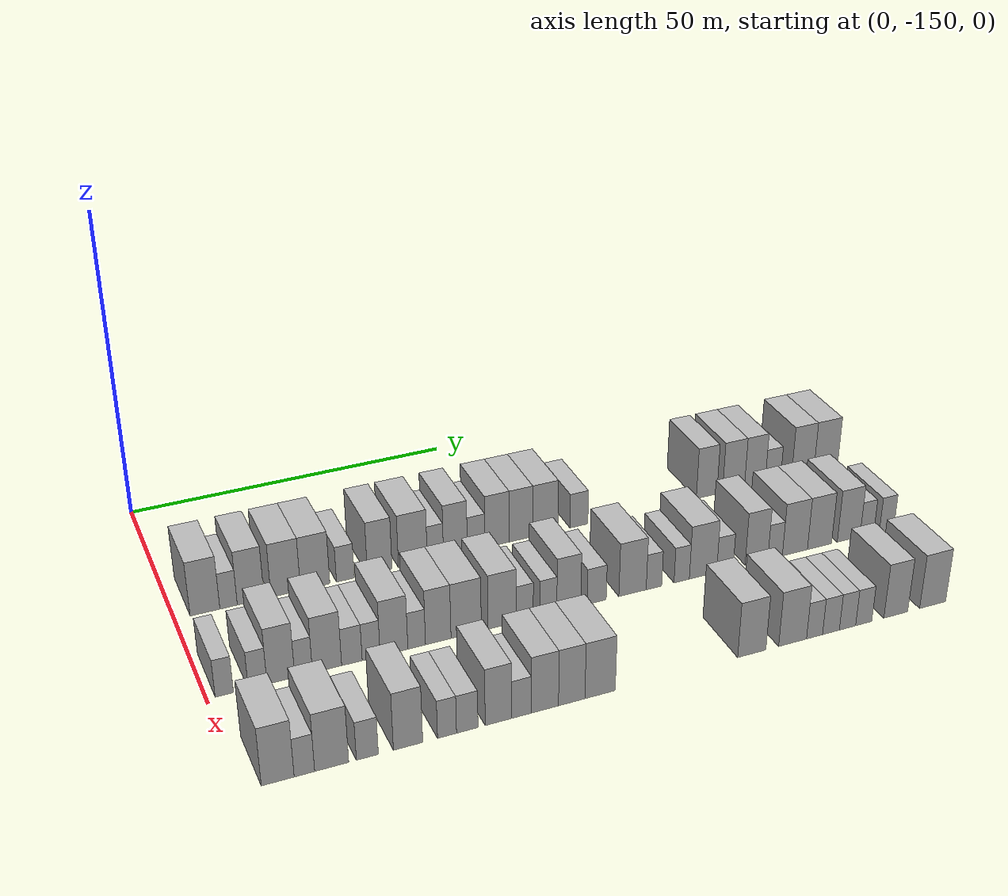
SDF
<sdf version="1.6">
 <world name="default">
  <model name="building_25">
   <static>1</static>
   <pose>25.0000 -145.6958 0 0.000000 0.000000 0.000000</pose>
   <link name="link">
    <pose>0 0 4.50 0 0 0</pose>
    <collision name="collision"><geometry><box><size>10.0000 4.2704 9.0000</size></box></geometry></collision>
    <visual name="visual">
     <cast_shadows>0</cast_shadows>
     <geometry><box><size>10.0000 4.2704 9.0000</size></box></geometry>
     <material>
      <script>
       <uri>model://HANNAS_wall/materials/scripts</uri>
       <uri>model://HANNAS_wall/materials/textures</uri>
       <name>vrc/HANNAS_wall</name>
      </script>
     </material>
    </visual>
   </link>
  </model>
  <model name="building_26">
   <static>1</static>
   <pose>25.0000 -142.3037 0 0.000000 0.000000 0.000000</pose>
   <link name="link">
    <pose>0 0 3.00 0 0 0</pose>
    <collision name="collision"><geometry><box><size>10.0000 2.5137 6.0000</size></box></geometry></collision>
    <visual name="visual">
     <cast_shadows>0</cast_shadows>
     <geometry><box><size>10.0000 2.5137 6.0000</size></box></geometry>
     <material>
      <script>
       <uri>model://HANNAS_wall/materials/scripts</uri>
       <uri>model://HANNAS_wall/materials/textures</uri>
       <name>vrc/HANNAS_wall</name>
      </script>
     </material>
    </visual>
   </link>
  </model>
  <model name="building_27">
   <static>1</static>
   <pose>25.0000 -139.0851 0 0.000000 0.000000 0.000000</pose>
   <link name="link">
    <pose>0 0 4.50 0 0 0</pose>
    <collision name="collision"><geometry><box><size>10.0000 3.9237 9.0000</size></box></geometry></collision>
    <visual name="visual">
     <cast_shadows>0</cast_shadows>
     <geometry><box><size>10.0000 3.9237 9.0000</size></box></geometry>
     <material>
      <script>
       <uri>model://HANNAS_wall/materials/scripts</uri>
       <uri>model://HANNAS_wall/materials/textures</uri>
       <name>vrc/HANNAS_wall</name>
      </script>
     </material>
    </visual>
   </link>
  </model>
  <model name="building_28">
   <static>1</static>
   <pose>25.0000 -133.9428 0 0.000000 0.000000 0.000000</pose>
   <link name="link">
    <pose>0 0 4.50 0 0 0</pose>
    <collision name="collision"><geometry><box><size>10.0000 4.3609 9.0000</size></box></geometry></collision>
    <visual name="visual">
     <cast_shadows>0</cast_shadows>
     <geometry><box><size>10.0000 4.3609 9.0000</size></box></geometry>
     <material>
      <script>
       <uri>model://HANNAS_wall/materials/scripts</uri>
       <uri>model://HANNAS_wall/materials/textures</uri>
       <name>vrc/HANNAS_wall</name>
      </script>
     </material>
    </visual>
   </link>
  </model>
  <model name="building_29">
   <static>1</static>
   <pose>25.0000 -129.5690 0 0.000000 0.000000 0.000000</pose>
   <link name="link">
    <pose>0 0 4.50 0 0 0</pose>
    <collision name="collision"><geometry><box><size>10.0000 4.3865 9.0000</size></box></geometry></collision>
    <visual name="visual">
     <cast_shadows>0</cast_shadows>
     <geometry><box><size>10.0000 4.3865 9.0000</size></box></geometry>
     <material>
      <script>
       <uri>model://HANNAS_wall/materials/scripts</uri>
       <uri>model://HANNAS_wall/materials/textures</uri>
       <name>vrc/HANNAS_wall</name>
      </script>
     </material>
    </visual>
   </link>
  </model>
  <model name="building_30">
   <static>1</static>
   <pose>25.0000 -125.0224 0 0.000000 0.000000 0.000000</pose>
   <link name="link">
    <pose>0 0 3.00 0 0 0</pose>
    <collision name="collision"><geometry><box><size>10.0000 2.7068 6.0000</size></box></geometry></collision>
    <visual name="visual">
     <cast_shadows>0</cast_shadows>
     <geometry><box><size>10.0000 2.7068 6.0000</size></box></geometry>
     <material>
      <script>
       <uri>model://HANNAS_wall/materials/scripts</uri>
       <uri>model://HANNAS_wall/materials/textures</uri>
       <name>vrc/HANNAS_wall</name>
      </script>
     </material>
    </visual>
   </link>
  </model>
  <model name="building_31">
   <static>1</static>
   <pose>25.0000 -119.7780 0 0.000000 0.000000 0.000000</pose>
   <link name="link">
    <pose>0 0 4.50 0 0 0</pose>
    <collision name="collision"><geometry><box><size>10.0000 3.7821 9.0000</size></box></geometry></collision>
    <visual name="visual">
     <cast_shadows>0</cast_shadows>
     <geometry><box><size>10.0000 3.7821 9.0000</size></box></geometry>
     <material>
      <script>
       <uri>model://HANNAS_wall/materials/scripts</uri>
       <uri>model://HANNAS_wall/materials/textures</uri>
       <name>vrc/HANNAS_wall</name>
      </script>
     </material>
    </visual>
   </link>
  </model>
  <model name="building_32">
   <static>1</static>
   <pose>25.0000 -114.6469 0 0.000000 0.000000 0.000000</pose>
   <link name="link">
    <pose>0 0 4.50 0 0 0</pose>
    <collision name="collision"><geometry><box><size>10.0000 4.4802 9.0000</size></box></geometry></collision>
    <visual name="visual">
     <cast_shadows>0</cast_shadows>
     <geometry><box><size>10.0000 4.4802 9.0000</size></box></geometry>
     <material>
      <script>
       <uri>model://HANNAS_wall/materials/scripts</uri>
       <uri>model://HANNAS_wall/materials/textures</uri>
       <name>vrc/HANNAS_wall</name>
      </script>
     </material>
    </visual>
   </link>
  </model>
  <model name="building_33">
   <static>1</static>
   <pose>25.0000 -111.1331 0 0.000000 0.000000 0.000000</pose>
   <link name="link">
    <pose>0 0 3.00 0 0 0</pose>
    <collision name="collision"><geometry><box><size>10.0000 2.5472 6.0000</size></box></geometry></collision>
    <visual name="visual">
     <cast_shadows>0</cast_shadows>
     <geometry><box><size>10.0000 2.5472 6.0000</size></box></geometry>
     <material>
      <script>
       <uri>model://HANNAS_wall/materials/scripts</uri>
       <uri>model://HANNAS_wall/materials/textures</uri>
       <name>vrc/HANNAS_wall</name>
      </script>
     </material>
    </visual>
   </link>
  </model>
  <model name="building_34">
   <static>1</static>
   <pose>25.0000 -107.9677 0 0.000000 0.000000 0.000000</pose>
   <link name="link">
    <pose>0 0 4.50 0 0 0</pose>
    <collision name="collision"><geometry><box><size>10.0000 3.7837 9.0000</size></box></geometry></collision>
    <visual name="visual">
     <cast_shadows>0</cast_shadows>
     <geometry><box><size>10.0000 3.7837 9.0000</size></box></geometry>
     <material>
      <script>
       <uri>model://HANNAS_wall/materials/scripts</uri>
       <uri>model://HANNAS_wall/materials/textures</uri>
       <name>vrc/HANNAS_wall</name>
      </script>
     </material>
    </visual>
   </link>
  </model>
  <model name="building_35">
   <static>1</static>
   <pose>25.0000 -104.6621 0 0.000000 0.000000 0.000000</pose>
   <link name="link">
    <pose>0 0 3.00 0 0 0</pose>
    <collision name="collision"><geometry><box><size>10.0000 2.8275 6.0000</size></box></geometry></collision>
    <visual name="visual">
     <cast_shadows>0</cast_shadows>
     <geometry><box><size>10.0000 2.8275 6.0000</size></box></geometry>
     <material>
      <script>
       <uri>model://HANNAS_wall/materials/scripts</uri>
       <uri>model://HANNAS_wall/materials/textures</uri>
       <name>vrc/HANNAS_wall</name>
      </script>
     </material>
    </visual>
   </link>
  </model>
  <model name="building_36">
   <static>1</static>
   <pose>25.0000 -101.2860 0 0.000000 0.000000 0.000000</pose>
   <link name="link">
    <pose>0 0 4.50 0 0 0</pose>
    <collision name="collision"><geometry><box><size>10.0000 3.9246 9.0000</size></box></geometry></collision>
    <visual name="visual">
     <cast_shadows>0</cast_shadows>
     <geometry><box><size>10.0000 3.9246 9.0000</size></box></geometry>
     <material>
      <script>
       <uri>model://HANNAS_wall/materials/scripts</uri>
       <uri>model://HANNAS_wall/materials/textures</uri>
       <name>vrc/HANNAS_wall</name>
      </script>
     </material>
    </visual>
   </link>
  </model>
  <model name="building_37">
   <static>1</static>
   <pose>25.0000 -97.4187 0 0.000000 0.000000 0.000000</pose>
   <link name="link">
    <pose>0 0 4.50 0 0 0</pose>
    <collision name="collision"><geometry><box><size>10.0000 3.8100 9.0000</size></box></geometry></collision>
    <visual name="visual">
     <cast_shadows>0</cast_shadows>
     <geometry><box><size>10.0000 3.8100 9.0000</size></box></geometry>
     <material>
      <script>
       <uri>model://HANNAS_wall/materials/scripts</uri>
       <uri>model://HANNAS_wall/materials/textures</uri>
       <name>vrc/HANNAS_wall</name>
      </script>
     </material>
    </visual>
   </link>
  </model>
  <model name="building_38">
   <static>1</static>
   <pose>25.0000 -93.4403 0 0.000000 0.000000 0.000000</pose>
   <link name="link">
    <pose>0 0 4.50 0 0 0</pose>
    <collision name="collision"><geometry><box><size>10.0000 4.1469 9.0000</size></box></geometry></collision>
    <visual name="visual">
     <cast_shadows>0</cast_shadows>
     <geometry><box><size>10.0000 4.1469 9.0000</size></box></geometry>
     <material>
      <script>
       <uri>model://HANNAS_wall/materials/scripts</uri>
       <uri>model://HANNAS_wall/materials/textures</uri>
       <name>vrc/HANNAS_wall</name>
      </script>
     </material>
    </visual>
   </link>
  </model>
  <model name="building_39">
   <static>1</static>
   <pose>25.0000 -87.8772 0 0.000000 0.000000 0.000000</pose>
   <link name="link">
    <pose>0 0 3.00 0 0 0</pose>
    <collision name="collision"><geometry><box><size>10.0000 2.9793 6.0000</size></box></geometry></collision>
    <visual name="visual">
     <cast_shadows>0</cast_shadows>
     <geometry><box><size>10.0000 2.9793 6.0000</size></box></geometry>
     <material>
      <script>
       <uri>model://HANNAS_wall/materials/scripts</uri>
       <uri>model://HANNAS_wall/materials/textures</uri>
       <name>vrc/HANNAS_wall</name>
      </script>
     </material>
    </visual>
   </link>
  </model>
  <model name="building_40">
   <static>1</static>
   <pose>25.0000 -65.9279 0 0.000000 0.000000 0.000000</pose>
   <link name="link">
    <pose>0 0 4.50 0 0 0</pose>
    <collision name="collision"><geometry><box><size>10.0000 3.6397 9.0000</size></box></geometry></collision>
    <visual name="visual">
     <cast_shadows>0</cast_shadows>
     <geometry><box><size>10.0000 3.6397 9.0000</size></box></geometry>
     <material>
      <script>
       <uri>model://HANNAS_wall/materials/scripts</uri>
       <uri>model://HANNAS_wall/materials/textures</uri>
       <name>vrc/HANNAS_wall</name>
      </script>
     </material>
    </visual>
   </link>
  </model>
  <model name="building_41">
   <static>1</static>
   <pose>25.0000 -61.1489 0 0.000000 0.000000 0.000000</pose>
   <link name="link">
    <pose>0 0 4.50 0 0 0</pose>
    <collision name="collision"><geometry><box><size>10.0000 3.9184 9.0000</size></box></geometry></collision>
    <visual name="visual">
     <cast_shadows>0</cast_shadows>
     <geometry><box><size>10.0000 3.9184 9.0000</size></box></geometry>
     <material>
      <script>
       <uri>model://HANNAS_wall/materials/scripts</uri>
       <uri>model://HANNAS_wall/materials/textures</uri>
       <name>vrc/HANNAS_wall</name>
      </script>
     </material>
    </visual>
   </link>
  </model>
  <model name="building_42">
   <static>1</static>
   <pose>25.0000 -57.3230 0 0.000000 0.000000 0.000000</pose>
   <link name="link">
    <pose>0 0 4.50 0 0 0</pose>
    <collision name="collision"><geometry><box><size>10.0000 3.7334 9.0000</size></box></geometry></collision>
    <visual name="visual">
     <cast_shadows>0</cast_shadows>
     <geometry><box><size>10.0000 3.7334 9.0000</size></box></geometry>
     <material>
      <script>
       <uri>model://HANNAS_wall/materials/scripts</uri>
       <uri>model://HANNAS_wall/materials/textures</uri>
       <name>vrc/HANNAS_wall</name>
      </script>
     </material>
    </visual>
   </link>
  </model>
  <model name="building_43">
   <static>1</static>
   <pose>25.0000 -54.0455 0 0.000000 0.000000 0.000000</pose>
   <link name="link">
    <pose>0 0 3.00 0 0 0</pose>
    <collision name="collision"><geometry><box><size>10.0000 2.8216 6.0000</size></box></geometry></collision>
    <visual name="visual">
     <cast_shadows>0</cast_shadows>
     <geometry><box><size>10.0000 2.8216 6.0000</size></box></geometry>
     <material>
      <script>
       <uri>model://HANNAS_wall/materials/scripts</uri>
       <uri>model://HANNAS_wall/materials/textures</uri>
       <name>vrc/HANNAS_wall</name>
      </script>
     </material>
    </visual>
   </link>
  </model>
  <model name="building_44">
   <static>1</static>
   <pose>25.0000 -48.5789 0 0.000000 0.000000 0.000000</pose>
   <link name="link">
    <pose>0 0 4.50 0 0 0</pose>
    <collision name="collision"><geometry><box><size>10.0000 4.1117 9.0000</size></box></geometry></collision>
    <visual name="visual">
     <cast_shadows>0</cast_shadows>
     <geometry><box><size>10.0000 4.1117 9.0000</size></box></geometry>
     <material>
      <script>
       <uri>model://HANNAS_wall/materials/scripts</uri>
       <uri>model://HANNAS_wall/materials/textures</uri>
       <name>vrc/HANNAS_wall</name>
      </script>
     </material>
    </visual>
   </link>
  </model>
  <model name="building_45">
   <static>1</static>
   <pose>25.0000 -44.3224 0 0.000000 0.000000 0.000000</pose>
   <link name="link">
    <pose>0 0 4.50 0 0 0</pose>
    <collision name="collision"><geometry><box><size>10.0000 4.4012 9.0000</size></box></geometry></collision>
    <visual name="visual">
     <cast_shadows>0</cast_shadows>
     <geometry><box><size>10.0000 4.4012 9.0000</size></box></geometry>
     <material>
      <script>
       <uri>model://HANNAS_wall/materials/scripts</uri>
       <uri>model://HANNAS_wall/materials/textures</uri>
       <name>vrc/HANNAS_wall</name>
      </script>
     </material>
    </visual>
   </link>
  </model>
  <model name="building_130">
   <static>1</static>
   <pose>44.0000 -147.6671 0 0.000000 0.000000 0.000000</pose>
   <link name="link">
    <pose>0 0 3.00 0 0 0</pose>
    <collision name="collision"><geometry><box><size>10.0000 2.4622 6.0000</size></box></geometry></collision>
    <visual name="visual">
     <cast_shadows>0</cast_shadows>
     <geometry><box><size>10.0000 2.4622 6.0000</size></box></geometry>
     <material>
      <script>
       <uri>model://HANNAS_wall/materials/scripts</uri>
       <uri>model://HANNAS_wall/materials/textures</uri>
       <name>vrc/HANNAS_wall</name>
      </script>
     </material>
    </visual>
   </link>
  </model>
  <model name="building_131">
   <static>1</static>
   <pose>44.0000 -143.1614 0 0.000000 0.000000 0.000000</pose>
   <link name="link">
    <pose>0 0 3.00 0 0 0</pose>
    <collision name="collision"><geometry><box><size>10.0000 2.5491 6.0000</size></box></geometry></collision>
    <visual name="visual">
     <cast_shadows>0</cast_shadows>
     <geometry><box><size>10.0000 2.5491 6.0000</size></box></geometry>
     <material>
      <script>
       <uri>model://HANNAS_wall/materials/scripts</uri>
       <uri>model://HANNAS_wall/materials/textures</uri>
       <name>vrc/HANNAS_wall</name>
      </script>
     </material>
    </visual>
   </link>
  </model>
  <model name="building_132">
   <static>1</static>
   <pose>44.0000 -139.9793 0 0.000000 0.000000 0.000000</pose>
   <link name="link">
    <pose>0 0 4.50 0 0 0</pose>
    <collision name="collision"><geometry><box><size>10.0000 3.8150 9.0000</size></box></geometry></collision>
    <visual name="visual">
     <cast_shadows>0</cast_shadows>
     <geometry><box><size>10.0000 3.8150 9.0000</size></box></geometry>
     <material>
      <script>
       <uri>model://HANNAS_wall/materials/scripts</uri>
       <uri>model://HANNAS_wall/materials/textures</uri>
       <name>vrc/HANNAS_wall</name>
      </script>
     </material>
    </visual>
   </link>
  </model>
  <model name="building_133">
   <static>1</static>
   <pose>44.0000 -136.8449 0 0.000000 0.000000 0.000000</pose>
   <link name="link">
    <pose>0 0 3.00 0 0 0</pose>
    <collision name="collision"><geometry><box><size>10.0000 2.4539 6.0000</size></box></geometry></collision>
    <visual name="visual">
     <cast_shadows>0</cast_shadows>
     <geometry><box><size>10.0000 2.4539 6.0000</size></box></geometry>
     <material>
      <script>
       <uri>model://HANNAS_wall/materials/scripts</uri>
       <uri>model://HANNAS_wall/materials/textures</uri>
       <name>vrc/HANNAS_wall</name>
      </script>
     </material>
    </visual>
   </link>
  </model>
  <model name="building_134">
   <static>1</static>
   <pose>44.0000 -133.5798 0 0.000000 0.000000 0.000000</pose>
   <link name="link">
    <pose>0 0 4.50 0 0 0</pose>
    <collision name="collision"><geometry><box><size>10.0000 4.0763 9.0000</size></box></geometry></collision>
    <visual name="visual">
     <cast_shadows>0</cast_shadows>
     <geometry><box><size>10.0000 4.0763 9.0000</size></box></geometry>
     <material>
      <script>
       <uri>model://HANNAS_wall/materials/scripts</uri>
       <uri>model://HANNAS_wall/materials/textures</uri>
       <name>vrc/HANNAS_wall</name>
      </script>
     </material>
    </visual>
   </link>
  </model>
  <model name="building_135">
   <static>1</static>
   <pose>44.0000 -130.0907 0 0.000000 0.000000 0.000000</pose>
   <link name="link">
    <pose>0 0 3.00 0 0 0</pose>
    <collision name="collision"><geometry><box><size>10.0000 2.9019 6.0000</size></box></geometry></collision>
    <visual name="visual">
     <cast_shadows>0</cast_shadows>
     <geometry><box><size>10.0000 2.9019 6.0000</size></box></geometry>
     <material>
      <script>
       <uri>model://HANNAS_wall/materials/scripts</uri>
       <uri>model://HANNAS_wall/materials/textures</uri>
       <name>vrc/HANNAS_wall</name>
      </script>
     </material>
    </visual>
   </link>
  </model>
  <model name="building_136">
   <static>1</static>
   <pose>44.0000 -127.3612 0 0.000000 0.000000 0.000000</pose>
   <link name="link">
    <pose>0 0 3.00 0 0 0</pose>
    <collision name="collision"><geometry><box><size>10.0000 2.5571 6.0000</size></box></geometry></collision>
    <visual name="visual">
     <cast_shadows>0</cast_shadows>
     <geometry><box><size>10.0000 2.5571 6.0000</size></box></geometry>
     <material>
      <script>
       <uri>model://HANNAS_wall/materials/scripts</uri>
       <uri>model://HANNAS_wall/materials/textures</uri>
       <name>vrc/HANNAS_wall</name>
      </script>
     </material>
    </visual>
   </link>
  </model>
  <model name="building_137">
   <static>1</static>
   <pose>44.0000 -124.0908 0 0.000000 0.000000 0.000000</pose>
   <link name="link">
    <pose>0 0 4.50 0 0 0</pose>
    <collision name="collision"><geometry><box><size>10.0000 3.9837 9.0000</size></box></geometry></collision>
    <visual name="visual">
     <cast_shadows>0</cast_shadows>
     <geometry><box><size>10.0000 3.9837 9.0000</size></box></geometry>
     <material>
      <script>
       <uri>model://HANNAS_wall/materials/scripts</uri>
       <uri>model://HANNAS_wall/materials/textures</uri>
       <name>vrc/HANNAS_wall</name>
      </script>
     </material>
    </visual>
   </link>
  </model>
  <model name="building_138">
   <static>1</static>
   <pose>44.0000 -120.8170 0 0.000000 0.000000 0.000000</pose>
   <link name="link">
    <pose>0 0 3.00 0 0 0</pose>
    <collision name="collision"><geometry><box><size>10.0000 2.5640 6.0000</size></box></geometry></collision>
    <visual name="visual">
     <cast_shadows>0</cast_shadows>
     <geometry><box><size>10.0000 2.5640 6.0000</size></box></geometry>
     <material>
      <script>
       <uri>model://HANNAS_wall/materials/scripts</uri>
       <uri>model://HANNAS_wall/materials/textures</uri>
       <name>vrc/HANNAS_wall</name>
      </script>
     </material>
    </visual>
   </link>
  </model>
  <model name="building_139">
   <static>1</static>
   <pose>44.0000 -117.6672 0 0.000000 0.000000 0.000000</pose>
   <link name="link">
    <pose>0 0 4.50 0 0 0</pose>
    <collision name="collision"><geometry><box><size>10.0000 3.7357 9.0000</size></box></geometry></collision>
    <visual name="visual">
     <cast_shadows>0</cast_shadows>
     <geometry><box><size>10.0000 3.7357 9.0000</size></box></geometry>
     <material>
      <script>
       <uri>model://HANNAS_wall/materials/scripts</uri>
       <uri>model://HANNAS_wall/materials/textures</uri>
       <name>vrc/HANNAS_wall</name>
      </script>
     </material>
    </visual>
   </link>
  </model>
  <model name="building_140">
   <static>1</static>
   <pose>44.0000 -113.5545 0 0.000000 0.000000 0.000000</pose>
   <link name="link">
    <pose>0 0 4.50 0 0 0</pose>
    <collision name="collision"><geometry><box><size>10.0000 4.4896 9.0000</size></box></geometry></collision>
    <visual name="visual">
     <cast_shadows>0</cast_shadows>
     <geometry><box><size>10.0000 4.4896 9.0000</size></box></geometry>
     <material>
      <script>
       <uri>model://HANNAS_wall/materials/scripts</uri>
       <uri>model://HANNAS_wall/materials/textures</uri>
       <name>vrc/HANNAS_wall</name>
      </script>
     </material>
    </visual>
   </link>
  </model>
  <model name="building_141">
   <static>1</static>
   <pose>44.0000 -108.1902 0 0.000000 0.000000 0.000000</pose>
   <link name="link">
    <pose>0 0 4.50 0 0 0</pose>
    <collision name="collision"><geometry><box><size>10.0000 4.2391 9.0000</size></box></geometry></collision>
    <visual name="visual">
     <cast_shadows>0</cast_shadows>
     <geometry><box><size>10.0000 4.2391 9.0000</size></box></geometry>
     <material>
      <script>
       <uri>model://HANNAS_wall/materials/scripts</uri>
       <uri>model://HANNAS_wall/materials/textures</uri>
       <name>vrc/HANNAS_wall</name>
      </script>
     </material>
    </visual>
   </link>
  </model>
  <model name="building_142">
   <static>1</static>
   <pose>44.0000 -104.7806 0 0.000000 0.000000 0.000000</pose>
   <link name="link">
    <pose>0 0 3.00 0 0 0</pose>
    <collision name="collision"><geometry><box><size>10.0000 2.5801 6.0000</size></box></geometry></collision>
    <visual name="visual">
     <cast_shadows>0</cast_shadows>
     <geometry><box><size>10.0000 2.5801 6.0000</size></box></geometry>
     <material>
      <script>
       <uri>model://HANNAS_wall/materials/scripts</uri>
       <uri>model://HANNAS_wall/materials/textures</uri>
       <name>vrc/HANNAS_wall</name>
      </script>
     </material>
    </visual>
   </link>
  </model>
  <model name="building_143">
   <static>1</static>
   <pose>44.0000 -101.1876 0 0.000000 0.000000 0.000000</pose>
   <link name="link">
    <pose>0 0 3.00 0 0 0</pose>
    <collision name="collision"><geometry><box><size>10.0000 2.6058 6.0000</size></box></geometry></collision>
    <visual name="visual">
     <cast_shadows>0</cast_shadows>
     <geometry><box><size>10.0000 2.6058 6.0000</size></box></geometry>
     <material>
      <script>
       <uri>model://HANNAS_wall/materials/scripts</uri>
       <uri>model://HANNAS_wall/materials/textures</uri>
       <name>vrc/HANNAS_wall</name>
      </script>
     </material>
    </visual>
   </link>
  </model>
  <model name="building_144">
   <static>1</static>
   <pose>44.0000 -98.0294 0 0.000000 0.000000 0.000000</pose>
   <link name="link">
    <pose>0 0 4.50 0 0 0</pose>
    <collision name="collision"><geometry><box><size>10.0000 3.7107 9.0000</size></box></geometry></collision>
    <visual name="visual">
     <cast_shadows>0</cast_shadows>
     <geometry><box><size>10.0000 3.7107 9.0000</size></box></geometry>
     <material>
      <script>
       <uri>model://HANNAS_wall/materials/scripts</uri>
       <uri>model://HANNAS_wall/materials/textures</uri>
       <name>vrc/HANNAS_wall</name>
      </script>
     </material>
    </visual>
   </link>
  </model>
  <model name="building_145">
   <static>1</static>
   <pose>44.0000 -93.6845 0 0.000000 0.000000 0.000000</pose>
   <link name="link">
    <pose>0 0 3.00 0 0 0</pose>
    <collision name="collision"><geometry><box><size>10.0000 2.9790 6.0000</size></box></geometry></collision>
    <visual name="visual">
     <cast_shadows>0</cast_shadows>
     <geometry><box><size>10.0000 2.9790 6.0000</size></box></geometry>
     <material>
      <script>
       <uri>model://HANNAS_wall/materials/scripts</uri>
       <uri>model://HANNAS_wall/materials/textures</uri>
       <name>vrc/HANNAS_wall</name>
      </script>
     </material>
    </visual>
   </link>
  </model>
  <model name="building_146">
   <static>1</static>
   <pose>44.0000 -88.0186 0 0.000000 0.000000 0.000000</pose>
   <link name="link">
    <pose>0 0 4.50 0 0 0</pose>
    <collision name="collision"><geometry><box><size>10.0000 4.3529 9.0000</size></box></geometry></collision>
    <visual name="visual">
     <cast_shadows>0</cast_shadows>
     <geometry><box><size>10.0000 4.3529 9.0000</size></box></geometry>
     <material>
      <script>
       <uri>model://HANNAS_wall/materials/scripts</uri>
       <uri>model://HANNAS_wall/materials/textures</uri>
       <name>vrc/HANNAS_wall</name>
      </script>
     </material>
    </visual>
   </link>
  </model>
  <model name="building_147">
   <static>1</static>
   <pose>44.0000 -84.5992 0 0.000000 0.000000 0.000000</pose>
   <link name="link">
    <pose>0 0 3.00 0 0 0</pose>
    <collision name="collision"><geometry><box><size>10.0000 2.4859 6.0000</size></box></geometry></collision>
    <visual name="visual">
     <cast_shadows>0</cast_shadows>
     <geometry><box><size>10.0000 2.4859 6.0000</size></box></geometry>
     <material>
      <script>
       <uri>model://HANNAS_wall/materials/scripts</uri>
       <uri>model://HANNAS_wall/materials/textures</uri>
       <name>vrc/HANNAS_wall</name>
      </script>
     </material>
    </visual>
   </link>
  </model>
  <model name="building_148">
   <static>1</static>
   <pose>44.0000 -80.1126 0 0.000000 0.000000 0.000000</pose>
   <link name="link">
    <pose>0 0 3.00 0 0 0</pose>
    <collision name="collision"><geometry><box><size>10.0000 2.4874 6.0000</size></box></geometry></collision>
    <visual name="visual">
     <cast_shadows>0</cast_shadows>
     <geometry><box><size>10.0000 2.4874 6.0000</size></box></geometry>
     <material>
      <script>
       <uri>model://HANNAS_wall/materials/scripts</uri>
       <uri>model://HANNAS_wall/materials/textures</uri>
       <name>vrc/HANNAS_wall</name>
      </script>
     </material>
    </visual>
   </link>
  </model>
  <model name="building_149">
   <static>1</static>
   <pose>44.0000 -76.6233 0 0.000000 0.000000 0.000000</pose>
   <link name="link">
    <pose>0 0 4.50 0 0 0</pose>
    <collision name="collision"><geometry><box><size>10.0000 4.4911 9.0000</size></box></geometry></collision>
    <visual name="visual">
     <cast_shadows>0</cast_shadows>
     <geometry><box><size>10.0000 4.4911 9.0000</size></box></geometry>
     <material>
      <script>
       <uri>model://HANNAS_wall/materials/scripts</uri>
       <uri>model://HANNAS_wall/materials/textures</uri>
       <name>vrc/HANNAS_wall</name>
      </script>
     </material>
    </visual>
   </link>
  </model>
  <model name="building_150">
   <static>1</static>
   <pose>44.0000 -73.0195 0 0.000000 0.000000 0.000000</pose>
   <link name="link">
    <pose>0 0 3.00 0 0 0</pose>
    <collision name="collision"><geometry><box><size>10.0000 2.7165 6.0000</size></box></geometry></collision>
    <visual name="visual">
     <cast_shadows>0</cast_shadows>
     <geometry><box><size>10.0000 2.7165 6.0000</size></box></geometry>
     <material>
      <script>
       <uri>model://HANNAS_wall/materials/scripts</uri>
       <uri>model://HANNAS_wall/materials/textures</uri>
       <name>vrc/HANNAS_wall</name>
      </script>
     </material>
    </visual>
   </link>
  </model>
  <model name="building_151">
   <static>1</static>
   <pose>44.0000 -67.7541 0 0.000000 0.000000 0.000000</pose>
   <link name="link">
    <pose>0 0 4.50 0 0 0</pose>
    <collision name="collision"><geometry><box><size>10.0000 3.8144 9.0000</size></box></geometry></collision>
    <visual name="visual">
     <cast_shadows>0</cast_shadows>
     <geometry><box><size>10.0000 3.8144 9.0000</size></box></geometry>
     <material>
      <script>
       <uri>model://HANNAS_wall/materials/scripts</uri>
       <uri>model://HANNAS_wall/materials/textures</uri>
       <name>vrc/HANNAS_wall</name>
      </script>
     </material>
    </visual>
   </link>
  </model>
  <model name="building_152">
   <static>1</static>
   <pose>44.0000 -64.6120 0 0.000000 0.000000 0.000000</pose>
   <link name="link">
    <pose>0 0 3.00 0 0 0</pose>
    <collision name="collision"><geometry><box><size>10.0000 2.4697 6.0000</size></box></geometry></collision>
    <visual name="visual">
     <cast_shadows>0</cast_shadows>
     <geometry><box><size>10.0000 2.4697 6.0000</size></box></geometry>
     <material>
      <script>
       <uri>model://HANNAS_wall/materials/scripts</uri>
       <uri>model://HANNAS_wall/materials/textures</uri>
       <name>vrc/HANNAS_wall</name>
      </script>
     </material>
    </visual>
   </link>
  </model>
  <model name="building_153">
   <static>1</static>
   <pose>44.0000 -61.2345 0 0.000000 0.000000 0.000000</pose>
   <link name="link">
    <pose>0 0 4.50 0 0 0</pose>
    <collision name="collision"><geometry><box><size>10.0000 4.2854 9.0000</size></box></geometry></collision>
    <visual name="visual">
     <cast_shadows>0</cast_shadows>
     <geometry><box><size>10.0000 4.2854 9.0000</size></box></geometry>
     <material>
      <script>
       <uri>model://HANNAS_wall/materials/scripts</uri>
       <uri>model://HANNAS_wall/materials/textures</uri>
       <name>vrc/HANNAS_wall</name>
      </script>
     </material>
    </visual>
   </link>
  </model>
  <model name="building_154">
   <static>1</static>
   <pose>44.0000 -57.0039 0 0.000000 0.000000 0.000000</pose>
   <link name="link">
    <pose>0 0 4.50 0 0 0</pose>
    <collision name="collision"><geometry><box><size>10.0000 4.1759 9.0000</size></box></geometry></collision>
    <visual name="visual">
     <cast_shadows>0</cast_shadows>
     <geometry><box><size>10.0000 4.1759 9.0000</size></box></geometry>
     <material>
      <script>
       <uri>model://HANNAS_wall/materials/scripts</uri>
       <uri>model://HANNAS_wall/materials/textures</uri>
       <name>vrc/HANNAS_wall</name>
      </script>
     </material>
    </visual>
   </link>
  </model>
  <model name="building_155">
   <static>1</static>
   <pose>44.0000 -51.9308 0 0.000000 0.000000 0.000000</pose>
   <link name="link">
    <pose>0 0 4.50 0 0 0</pose>
    <collision name="collision"><geometry><box><size>10.0000 3.9702 9.0000</size></box></geometry></collision>
    <visual name="visual">
     <cast_shadows>0</cast_shadows>
     <geometry><box><size>10.0000 3.9702 9.0000</size></box></geometry>
     <material>
      <script>
       <uri>model://HANNAS_wall/materials/scripts</uri>
       <uri>model://HANNAS_wall/materials/textures</uri>
       <name>vrc/HANNAS_wall</name>
      </script>
     </material>
    </visual>
   </link>
  </model>
  <model name="building_156">
   <static>1</static>
   <pose>44.0000 -48.7282 0 0.000000 0.000000 0.000000</pose>
   <link name="link">
    <pose>0 0 3.00 0 0 0</pose>
    <collision name="collision"><geometry><box><size>10.0000 2.4351 6.0000</size></box></geometry></collision>
    <visual name="visual">
     <cast_shadows>0</cast_shadows>
     <geometry><box><size>10.0000 2.4351 6.0000</size></box></geometry>
     <material>
      <script>
       <uri>model://HANNAS_wall/materials/scripts</uri>
       <uri>model://HANNAS_wall/materials/textures</uri>
       <name>vrc/HANNAS_wall</name>
      </script>
     </material>
    </visual>
   </link>
  </model>
  <model name="building_157">
   <static>1</static>
   <pose>44.0000 -45.2233 0 0.000000 0.000000 0.000000</pose>
   <link name="link">
    <pose>0 0 3.00 0 0 0</pose>
    <collision name="collision"><geometry><box><size>10.0000 2.5749 6.0000</size></box></geometry></collision>
    <visual name="visual">
     <cast_shadows>0</cast_shadows>
     <geometry><box><size>10.0000 2.5749 6.0000</size></box></geometry>
     <material>
      <script>
       <uri>model://HANNAS_wall/materials/scripts</uri>
       <uri>model://HANNAS_wall/materials/textures</uri>
       <name>vrc/HANNAS_wall</name>
      </script>
     </material>
    </visual>
   </link>
  </model>
  <model name="building_251">
   <static>1</static>
   <pose>63.0000 -145.7028 0 0.000000 0.000000 0.000000</pose>
   <link name="link">
    <pose>0 0 4.50 0 0 0</pose>
    <collision name="collision"><geometry><box><size>10.0000 4.1776 9.0000</size></box></geometry></collision>
    <visual name="visual">
     <cast_shadows>0</cast_shadows>
     <geometry><box><size>10.0000 4.1776 9.0000</size></box></geometry>
     <material>
      <script>
       <uri>model://HANNAS_wall/materials/scripts</uri>
       <uri>model://HANNAS_wall/materials/textures</uri>
       <name>vrc/HANNAS_wall</name>
      </script>
     </material>
    </visual>
   </link>
  </model>
  <model name="building_252">
   <static>1</static>
   <pose>63.0000 -142.2986 0 0.000000 0.000000 0.000000</pose>
   <link name="link">
    <pose>0 0 3.00 0 0 0</pose>
    <collision name="collision"><geometry><box><size>10.0000 2.6307 6.0000</size></box></geometry></collision>
    <visual name="visual">
     <cast_shadows>0</cast_shadows>
     <geometry><box><size>10.0000 2.6307 6.0000</size></box></geometry>
     <material>
      <script>
       <uri>model://HANNAS_wall/materials/scripts</uri>
       <uri>model://HANNAS_wall/materials/textures</uri>
       <name>vrc/HANNAS_wall</name>
      </script>
     </material>
    </visual>
   </link>
  </model>
  <model name="building_253">
   <static>1</static>
   <pose>63.0000 -138.7787 0 0.000000 0.000000 0.000000</pose>
   <link name="link">
    <pose>0 0 4.50 0 0 0</pose>
    <collision name="collision"><geometry><box><size>10.0000 4.4091 9.0000</size></box></geometry></collision>
    <visual name="visual">
     <cast_shadows>0</cast_shadows>
     <geometry><box><size>10.0000 4.4091 9.0000</size></box></geometry>
     <material>
      <script>
       <uri>model://HANNAS_wall/materials/scripts</uri>
       <uri>model://HANNAS_wall/materials/textures</uri>
       <name>vrc/HANNAS_wall</name>
      </script>
     </material>
    </visual>
   </link>
  </model>
  <model name="building_254">
   <static>1</static>
   <pose>63.0000 -134.1303 0 0.000000 0.000000 0.000000</pose>
   <link name="link">
    <pose>0 0 3.00 0 0 0</pose>
    <collision name="collision"><geometry><box><size>10.0000 2.8878 6.0000</size></box></geometry></collision>
    <visual name="visual">
     <cast_shadows>0</cast_shadows>
     <geometry><box><size>10.0000 2.8878 6.0000</size></box></geometry>
     <material>
      <script>
       <uri>model://HANNAS_wall/materials/scripts</uri>
       <uri>model://HANNAS_wall/materials/textures</uri>
       <name>vrc/HANNAS_wall</name>
      </script>
     </material>
    </visual>
   </link>
  </model>
  <model name="building_255">
   <static>1</static>
   <pose>63.0000 -128.7264 0 0.000000 0.000000 0.000000</pose>
   <link name="link">
    <pose>0 0 4.50 0 0 0</pose>
    <collision name="collision"><geometry><box><size>10.0000 3.9199 9.0000</size></box></geometry></collision>
    <visual name="visual">
     <cast_shadows>0</cast_shadows>
     <geometry><box><size>10.0000 3.9199 9.0000</size></box></geometry>
     <material>
      <script>
       <uri>model://HANNAS_wall/materials/scripts</uri>
       <uri>model://HANNAS_wall/materials/textures</uri>
       <name>vrc/HANNAS_wall</name>
      </script>
     </material>
    </visual>
   </link>
  </model>
  <model name="building_256">
   <static>1</static>
   <pose>63.0000 -123.4748 0 0.000000 0.000000 0.000000</pose>
   <link name="link">
    <pose>0 0 3.00 0 0 0</pose>
    <collision name="collision"><geometry><box><size>10.0000 2.5833 6.0000</size></box></geometry></collision>
    <visual name="visual">
     <cast_shadows>0</cast_shadows>
     <geometry><box><size>10.0000 2.5833 6.0000</size></box></geometry>
     <material>
      <script>
       <uri>model://HANNAS_wall/materials/scripts</uri>
       <uri>model://HANNAS_wall/materials/textures</uri>
       <name>vrc/HANNAS_wall</name>
      </script>
     </material>
    </visual>
   </link>
  </model>
  <model name="building_257">
   <static>1</static>
   <pose>63.0000 -120.7104 0 0.000000 0.000000 0.000000</pose>
   <link name="link">
    <pose>0 0 3.00 0 0 0</pose>
    <collision name="collision"><geometry><box><size>10.0000 2.9455 6.0000</size></box></geometry></collision>
    <visual name="visual">
     <cast_shadows>0</cast_shadows>
     <geometry><box><size>10.0000 2.9455 6.0000</size></box></geometry>
     <material>
      <script>
       <uri>model://HANNAS_wall/materials/scripts</uri>
       <uri>model://HANNAS_wall/materials/textures</uri>
       <name>vrc/HANNAS_wall</name>
      </script>
     </material>
    </visual>
   </link>
  </model>
  <model name="building_258">
   <static>1</static>
   <pose>63.0000 -116.3925 0 0.000000 0.000000 0.000000</pose>
   <link name="link">
    <pose>0 0 4.50 0 0 0</pose>
    <collision name="collision"><geometry><box><size>10.0000 3.6903 9.0000</size></box></geometry></collision>
    <visual name="visual">
     <cast_shadows>0</cast_shadows>
     <geometry><box><size>10.0000 3.6903 9.0000</size></box></geometry>
     <material>
      <script>
       <uri>model://HANNAS_wall/materials/scripts</uri>
       <uri>model://HANNAS_wall/materials/textures</uri>
       <name>vrc/HANNAS_wall</name>
      </script>
     </material>
    </visual>
   </link>
  </model>
  <model name="building_259">
   <static>1</static>
   <pose>63.0000 -113.1808 0 0.000000 0.000000 0.000000</pose>
   <link name="link">
    <pose>0 0 3.00 0 0 0</pose>
    <collision name="collision"><geometry><box><size>10.0000 2.7330 6.0000</size></box></geometry></collision>
    <visual name="visual">
     <cast_shadows>0</cast_shadows>
     <geometry><box><size>10.0000 2.7330 6.0000</size></box></geometry>
     <material>
      <script>
       <uri>model://HANNAS_wall/materials/scripts</uri>
       <uri>model://HANNAS_wall/materials/textures</uri>
       <name>vrc/HANNAS_wall</name>
      </script>
     </material>
    </visual>
   </link>
  </model>
  <model name="building_260">
   <static>1</static>
   <pose>63.0000 -109.8878 0 0.000000 0.000000 0.000000</pose>
   <link name="link">
    <pose>0 0 4.50 0 0 0</pose>
    <collision name="collision"><geometry><box><size>10.0000 3.8530 9.0000</size></box></geometry></collision>
    <visual name="visual">
     <cast_shadows>0</cast_shadows>
     <geometry><box><size>10.0000 3.8530 9.0000</size></box></geometry>
     <material>
      <script>
       <uri>model://HANNAS_wall/materials/scripts</uri>
       <uri>model://HANNAS_wall/materials/textures</uri>
       <name>vrc/HANNAS_wall</name>
      </script>
     </material>
    </visual>
   </link>
  </model>
  <model name="building_261">
   <static>1</static>
   <pose>63.0000 -106.0667 0 0.000000 0.000000 0.000000</pose>
   <link name="link">
    <pose>0 0 4.50 0 0 0</pose>
    <collision name="collision"><geometry><box><size>10.0000 3.7892 9.0000</size></box></geometry></collision>
    <visual name="visual">
     <cast_shadows>0</cast_shadows>
     <geometry><box><size>10.0000 3.7892 9.0000</size></box></geometry>
     <material>
      <script>
       <uri>model://HANNAS_wall/materials/scripts</uri>
       <uri>model://HANNAS_wall/materials/textures</uri>
       <name>vrc/HANNAS_wall</name>
      </script>
     </material>
    </visual>
   </link>
  </model>
  <model name="building_262">
   <static>1</static>
   <pose>63.0000 -101.9731 0 0.000000 0.000000 0.000000</pose>
   <link name="link">
    <pose>0 0 4.50 0 0 0</pose>
    <collision name="collision"><geometry><box><size>10.0000 4.3981 9.0000</size></box></geometry></collision>
    <visual name="visual">
     <cast_shadows>0</cast_shadows>
     <geometry><box><size>10.0000 4.3981 9.0000</size></box></geometry>
     <material>
      <script>
       <uri>model://HANNAS_wall/materials/scripts</uri>
       <uri>model://HANNAS_wall/materials/textures</uri>
       <name>vrc/HANNAS_wall</name>
      </script>
     </material>
    </visual>
   </link>
  </model>
  <model name="building_263">
   <static>1</static>
   <pose>63.0000 -79.2080 0 0.000000 0.000000 0.000000</pose>
   <link name="link">
    <pose>0 0 4.50 0 0 0</pose>
    <collision name="collision"><geometry><box><size>10.0000 4.3774 9.0000</size></box></geometry></collision>
    <visual name="visual">
     <cast_shadows>0</cast_shadows>
     <geometry><box><size>10.0000 4.3774 9.0000</size></box></geometry>
     <material>
      <script>
       <uri>model://HANNAS_wall/materials/scripts</uri>
       <uri>model://HANNAS_wall/materials/textures</uri>
       <name>vrc/HANNAS_wall</name>
      </script>
     </material>
    </visual>
   </link>
  </model>
  <model name="building_264">
   <static>1</static>
   <pose>63.0000 -72.8167 0 0.000000 0.000000 0.000000</pose>
   <link name="link">
    <pose>0 0 4.50 0 0 0</pose>
    <collision name="collision"><geometry><box><size>10.0000 4.4052 9.0000</size></box></geometry></collision>
    <visual name="visual">
     <cast_shadows>0</cast_shadows>
     <geometry><box><size>10.0000 4.4052 9.0000</size></box></geometry>
     <material>
      <script>
       <uri>model://HANNAS_wall/materials/scripts</uri>
       <uri>model://HANNAS_wall/materials/textures</uri>
       <name>vrc/HANNAS_wall</name>
      </script>
     </material>
    </visual>
   </link>
  </model>
  <model name="building_265">
   <static>1</static>
   <pose>63.0000 -69.3374 0 0.000000 0.000000 0.000000</pose>
   <link name="link">
    <pose>0 0 3.00 0 0 0</pose>
    <collision name="collision"><geometry><box><size>10.0000 2.5534 6.0000</size></box></geometry></collision>
    <visual name="visual">
     <cast_shadows>0</cast_shadows>
     <geometry><box><size>10.0000 2.5534 6.0000</size></box></geometry>
     <material>
      <script>
       <uri>model://HANNAS_wall/materials/scripts</uri>
       <uri>model://HANNAS_wall/materials/textures</uri>
       <name>vrc/HANNAS_wall</name>
      </script>
     </material>
    </visual>
   </link>
  </model>
  <model name="building_266">
   <static>1</static>
   <pose>63.0000 -66.7073 0 0.000000 0.000000 0.000000</pose>
   <link name="link">
    <pose>0 0 3.00 0 0 0</pose>
    <collision name="collision"><geometry><box><size>10.0000 2.7067 6.0000</size></box></geometry></collision>
    <visual name="visual">
     <cast_shadows>0</cast_shadows>
     <geometry><box><size>10.0000 2.7067 6.0000</size></box></geometry>
     <material>
      <script>
       <uri>model://HANNAS_wall/materials/scripts</uri>
       <uri>model://HANNAS_wall/materials/textures</uri>
       <name>vrc/HANNAS_wall</name>
      </script>
     </material>
    </visual>
   </link>
  </model>
  <model name="building_267">
   <static>1</static>
   <pose>63.0000 -64.0331 0 0.000000 0.000000 0.000000</pose>
   <link name="link">
    <pose>0 0 3.00 0 0 0</pose>
    <collision name="collision"><geometry><box><size>10.0000 2.6418 6.0000</size></box></geometry></collision>
    <visual name="visual">
     <cast_shadows>0</cast_shadows>
     <geometry><box><size>10.0000 2.6418 6.0000</size></box></geometry>
     <material>
      <script>
       <uri>model://HANNAS_wall/materials/scripts</uri>
       <uri>model://HANNAS_wall/materials/textures</uri>
       <name>vrc/HANNAS_wall</name>
      </script>
     </material>
    </visual>
   </link>
  </model>
  <model name="building_268">
   <static>1</static>
   <pose>63.0000 -61.4038 0 0.000000 0.000000 0.000000</pose>
   <link name="link">
    <pose>0 0 3.00 0 0 0</pose>
    <collision name="collision"><geometry><box><size>10.0000 2.6167 6.0000</size></box></geometry></collision>
    <visual name="visual">
     <cast_shadows>0</cast_shadows>
     <geometry><box><size>10.0000 2.6167 6.0000</size></box></geometry>
     <material>
      <script>
       <uri>model://HANNAS_wall/materials/scripts</uri>
       <uri>model://HANNAS_wall/materials/textures</uri>
       <name>vrc/HANNAS_wall</name>
      </script>
     </material>
    </visual>
   </link>
  </model>
  <model name="building_269">
   <static>1</static>
   <pose>63.0000 -56.1227 0 0.000000 0.000000 0.000000</pose>
   <link name="link">
    <pose>0 0 4.50 0 0 0</pose>
    <collision name="collision"><geometry><box><size>10.0000 3.9456 9.0000</size></box></geometry></collision>
    <visual name="visual">
     <cast_shadows>0</cast_shadows>
     <geometry><box><size>10.0000 3.9456 9.0000</size></box></geometry>
     <material>
      <script>
       <uri>model://HANNAS_wall/materials/scripts</uri>
       <uri>model://HANNAS_wall/materials/textures</uri>
       <name>vrc/HANNAS_wall</name>
      </script>
     </material>
    </visual>
   </link>
  </model>
  <model name="building_270">
   <static>1</static>
   <pose>63.0000 -49.9630 0 0.000000 0.000000 0.000000</pose>
   <link name="link">
    <pose>0 0 4.50 0 0 0</pose>
    <collision name="collision"><geometry><box><size>10.0000 4.3738 9.0000</size></box></geometry></collision>
    <visual name="visual">
     <cast_shadows>0</cast_shadows>
     <geometry><box><size>10.0000 4.3738 9.0000</size></box></geometry>
     <material>
      <script>
       <uri>model://HANNAS_wall/materials/scripts</uri>
       <uri>model://HANNAS_wall/materials/textures</uri>
       <name>vrc/HANNAS_wall</name>
      </script>
     </material>
    </visual>
   </link>
  </model>
 </world>
</sdf>
